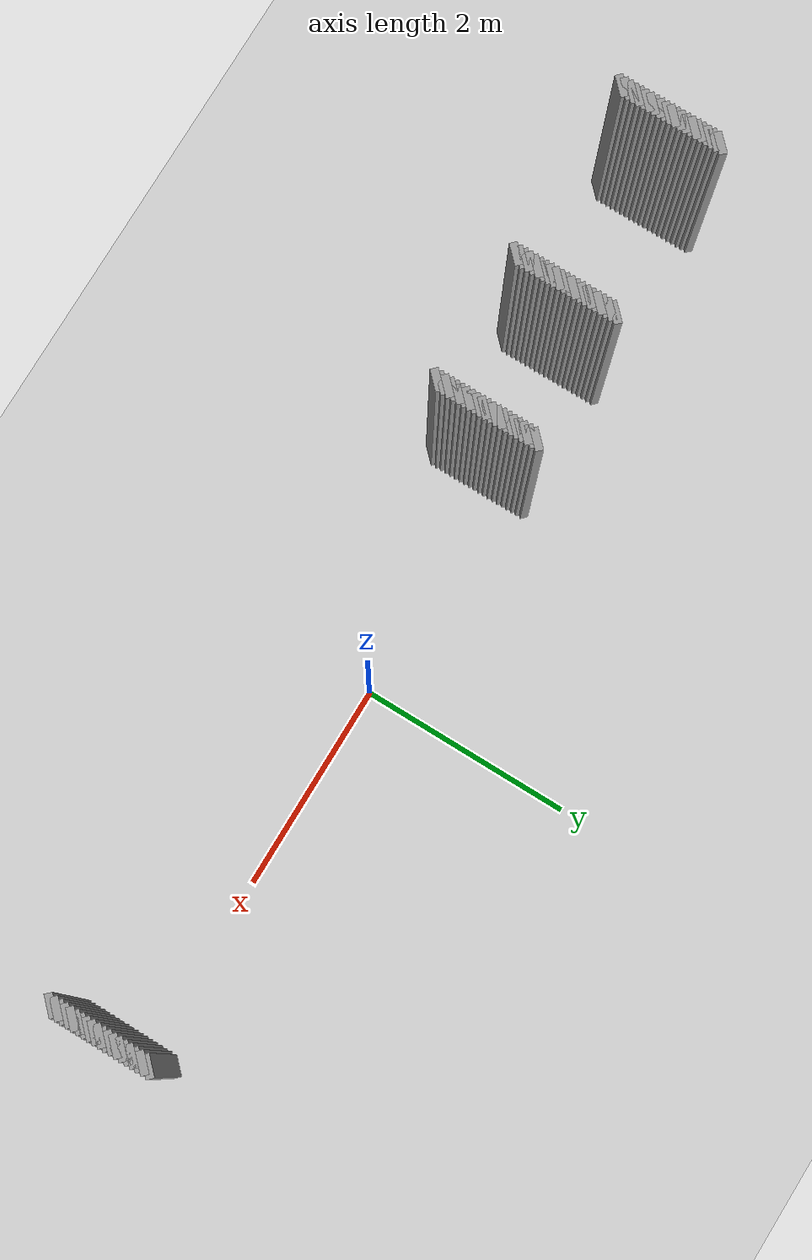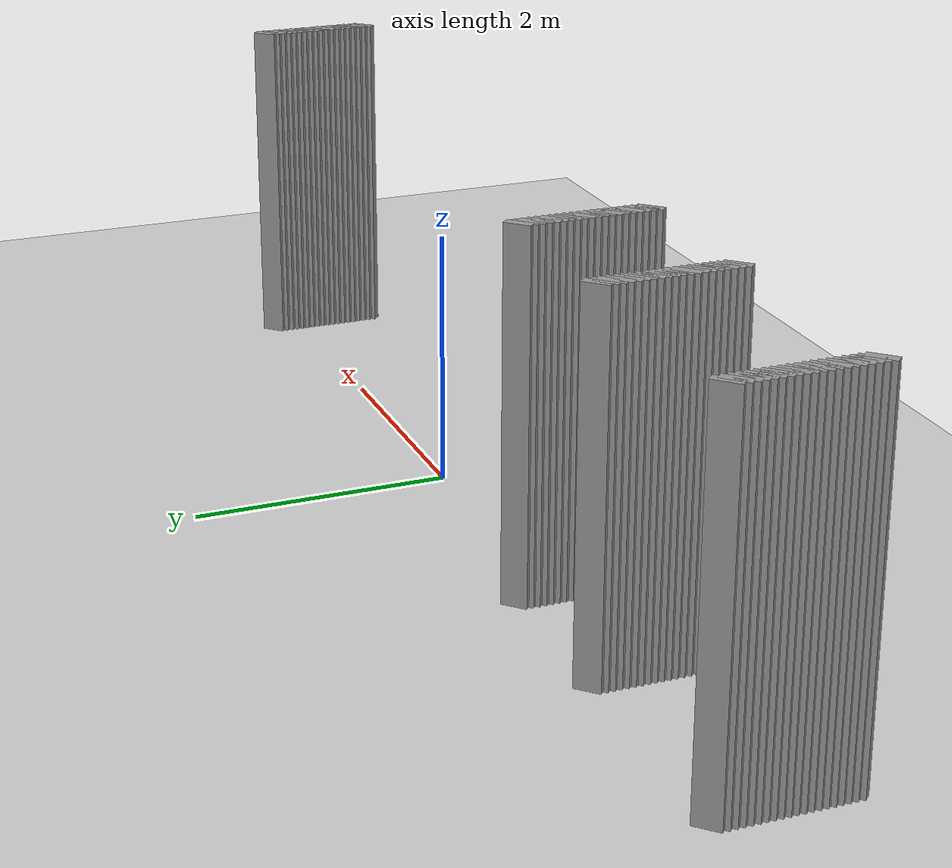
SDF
<sdf version="1.5">
 <world name="default">
  <include><uri>model://ground_plane</uri></include>
  <include><uri>model://sun</uri></include>
  <model name="grey_wall_865">
   <static>1</static>
   <link name="link">
    <pose>-5.125 0.275  1.4 0 0 -0.785398163397</pose>
    <collision name="collision"><geometry><box><size>0.0707106781187 .2  2.8</size></box></geometry></collision>
    <visual name="visual">
     <cast_shadows>0</cast_shadows>
     <geometry><box><size>0.0707106781187 .2  2.8</size></box></geometry>
     <material>
      <script>
       <uri>model://grey_wall/materials/scripts</uri>
       <uri>model://grey_wall/materials/textures</uri>
       <name>vrc/grey_wall</name>
      </script>
     </material>
    </visual>
   </link>
  </model>
  <model name="grey_wall_866">
   <static>1</static>
   <link name="link">
    <pose>-3.425 0.275  1.4 0 0 -0.785398163397</pose>
    <collision name="collision"><geometry><box><size>0.0707106781187 .2  2.8</size></box></geometry></collision>
    <visual name="visual">
     <cast_shadows>0</cast_shadows>
     <geometry><box><size>0.0707106781187 .2  2.8</size></box></geometry>
     <material>
      <script>
       <uri>model://grey_wall/materials/scripts</uri>
       <uri>model://grey_wall/materials/textures</uri>
       <name>vrc/grey_wall</name>
      </script>
     </material>
    </visual>
   </link>
  </model>
  <model name="grey_wall_867">
   <static>1</static>
   <link name="link">
    <pose>-2.175 0.275  1.4 0 0 -0.785398163397</pose>
    <collision name="collision"><geometry><box><size>0.0707106781187 .2  2.8</size></box></geometry></collision>
    <visual name="visual">
     <cast_shadows>0</cast_shadows>
     <geometry><box><size>0.0707106781187 .2  2.8</size></box></geometry>
     <material>
      <script>
       <uri>model://grey_wall/materials/scripts</uri>
       <uri>model://grey_wall/materials/textures</uri>
       <name>vrc/grey_wall</name>
      </script>
     </material>
    </visual>
   </link>
  </model>
  <model name="grey_wall_868">
   <static>1</static>
   <link name="link">
    <pose>3.725 0.275  1.4 0 0 -0.785398163397</pose>
    <collision name="collision"><geometry><box><size>0.0707106781187 .2  2.8</size></box></geometry></collision>
    <visual name="visual">
     <cast_shadows>0</cast_shadows>
     <geometry><box><size>0.0707106781187 .2  2.8</size></box></geometry>
     <material>
      <script>
       <uri>model://grey_wall/materials/scripts</uri>
       <uri>model://grey_wall/materials/textures</uri>
       <name>vrc/grey_wall</name>
      </script>
     </material>
    </visual>
   </link>
  </model>
  <model name="grey_wall_869">
   <static>1</static>
   <link name="link">
    <pose>-5.125 0.225  1.4 0 0 -0.785398163397</pose>
    <collision name="collision"><geometry><box><size>0.0707106781187 .2  2.8</size></box></geometry></collision>
    <visual name="visual">
     <cast_shadows>0</cast_shadows>
     <geometry><box><size>0.0707106781187 .2  2.8</size></box></geometry>
     <material>
      <script>
       <uri>model://grey_wall/materials/scripts</uri>
       <uri>model://grey_wall/materials/textures</uri>
       <name>vrc/grey_wall</name>
      </script>
     </material>
    </visual>
   </link>
  </model>
  <model name="grey_wall_870">
   <static>1</static>
   <link name="link">
    <pose>-3.425 0.225  1.4 0 0 -0.785398163397</pose>
    <collision name="collision"><geometry><box><size>0.0707106781187 .2  2.8</size></box></geometry></collision>
    <visual name="visual">
     <cast_shadows>0</cast_shadows>
     <geometry><box><size>0.0707106781187 .2  2.8</size></box></geometry>
     <material>
      <script>
       <uri>model://grey_wall/materials/scripts</uri>
       <uri>model://grey_wall/materials/textures</uri>
       <name>vrc/grey_wall</name>
      </script>
     </material>
    </visual>
   </link>
  </model>
  <model name="grey_wall_871">
   <static>1</static>
   <link name="link">
    <pose>-2.175 0.225  1.4 0 0 -0.785398163397</pose>
    <collision name="collision"><geometry><box><size>0.0707106781187 .2  2.8</size></box></geometry></collision>
    <visual name="visual">
     <cast_shadows>0</cast_shadows>
     <geometry><box><size>0.0707106781187 .2  2.8</size></box></geometry>
     <material>
      <script>
       <uri>model://grey_wall/materials/scripts</uri>
       <uri>model://grey_wall/materials/textures</uri>
       <name>vrc/grey_wall</name>
      </script>
     </material>
    </visual>
   </link>
  </model>
  <model name="grey_wall_872">
   <static>1</static>
   <link name="link">
    <pose>3.725 0.225  1.4 0 0 -0.785398163397</pose>
    <collision name="collision"><geometry><box><size>0.0707106781187 .2  2.8</size></box></geometry></collision>
    <visual name="visual">
     <cast_shadows>0</cast_shadows>
     <geometry><box><size>0.0707106781187 .2  2.8</size></box></geometry>
     <material>
      <script>
       <uri>model://grey_wall/materials/scripts</uri>
       <uri>model://grey_wall/materials/textures</uri>
       <name>vrc/grey_wall</name>
      </script>
     </material>
    </visual>
   </link>
  </model>
  <model name="grey_wall_873">
   <static>1</static>
   <link name="link">
    <pose>-5.125 0.175  1.4 0 0 -0.785398163397</pose>
    <collision name="collision"><geometry><box><size>0.0707106781187 .2  2.8</size></box></geometry></collision>
    <visual name="visual">
     <cast_shadows>0</cast_shadows>
     <geometry><box><size>0.0707106781187 .2  2.8</size></box></geometry>
     <material>
      <script>
       <uri>model://grey_wall/materials/scripts</uri>
       <uri>model://grey_wall/materials/textures</uri>
       <name>vrc/grey_wall</name>
      </script>
     </material>
    </visual>
   </link>
  </model>
  <model name="grey_wall_874">
   <static>1</static>
   <link name="link">
    <pose>-3.425 0.175  1.4 0 0 -0.785398163397</pose>
    <collision name="collision"><geometry><box><size>0.0707106781187 .2  2.8</size></box></geometry></collision>
    <visual name="visual">
     <cast_shadows>0</cast_shadows>
     <geometry><box><size>0.0707106781187 .2  2.8</size></box></geometry>
     <material>
      <script>
       <uri>model://grey_wall/materials/scripts</uri>
       <uri>model://grey_wall/materials/textures</uri>
       <name>vrc/grey_wall</name>
      </script>
     </material>
    </visual>
   </link>
  </model>
  <model name="grey_wall_875">
   <static>1</static>
   <link name="link">
    <pose>-2.175 0.175  1.4 0 0 -0.785398163397</pose>
    <collision name="collision"><geometry><box><size>0.0707106781187 .2  2.8</size></box></geometry></collision>
    <visual name="visual">
     <cast_shadows>0</cast_shadows>
     <geometry><box><size>0.0707106781187 .2  2.8</size></box></geometry>
     <material>
      <script>
       <uri>model://grey_wall/materials/scripts</uri>
       <uri>model://grey_wall/materials/textures</uri>
       <name>vrc/grey_wall</name>
      </script>
     </material>
    </visual>
   </link>
  </model>
  <model name="grey_wall_876">
   <static>1</static>
   <link name="link">
    <pose>3.725 0.175  1.4 0 0 -0.785398163397</pose>
    <collision name="collision"><geometry><box><size>0.0707106781187 .2  2.8</size></box></geometry></collision>
    <visual name="visual">
     <cast_shadows>0</cast_shadows>
     <geometry><box><size>0.0707106781187 .2  2.8</size></box></geometry>
     <material>
      <script>
       <uri>model://grey_wall/materials/scripts</uri>
       <uri>model://grey_wall/materials/textures</uri>
       <name>vrc/grey_wall</name>
      </script>
     </material>
    </visual>
   </link>
  </model>
  <model name="grey_wall_877">
   <static>1</static>
   <link name="link">
    <pose>-5.125 0.125  1.4 0 0 -0.785398163397</pose>
    <collision name="collision"><geometry><box><size>0.0707106781187 .2  2.8</size></box></geometry></collision>
    <visual name="visual">
     <cast_shadows>0</cast_shadows>
     <geometry><box><size>0.0707106781187 .2  2.8</size></box></geometry>
     <material>
      <script>
       <uri>model://grey_wall/materials/scripts</uri>
       <uri>model://grey_wall/materials/textures</uri>
       <name>vrc/grey_wall</name>
      </script>
     </material>
    </visual>
   </link>
  </model>
  <model name="grey_wall_878">
   <static>1</static>
   <link name="link">
    <pose>-3.425 0.125  1.4 0 0 -0.785398163397</pose>
    <collision name="collision"><geometry><box><size>0.0707106781187 .2  2.8</size></box></geometry></collision>
    <visual name="visual">
     <cast_shadows>0</cast_shadows>
     <geometry><box><size>0.0707106781187 .2  2.8</size></box></geometry>
     <material>
      <script>
       <uri>model://grey_wall/materials/scripts</uri>
       <uri>model://grey_wall/materials/textures</uri>
       <name>vrc/grey_wall</name>
      </script>
     </material>
    </visual>
   </link>
  </model>
  <model name="grey_wall_879">
   <static>1</static>
   <link name="link">
    <pose>-2.175 0.125  1.4 0 0 -0.785398163397</pose>
    <collision name="collision"><geometry><box><size>0.0707106781187 .2  2.8</size></box></geometry></collision>
    <visual name="visual">
     <cast_shadows>0</cast_shadows>
     <geometry><box><size>0.0707106781187 .2  2.8</size></box></geometry>
     <material>
      <script>
       <uri>model://grey_wall/materials/scripts</uri>
       <uri>model://grey_wall/materials/textures</uri>
       <name>vrc/grey_wall</name>
      </script>
     </material>
    </visual>
   </link>
  </model>
  <model name="grey_wall_880">
   <static>1</static>
   <link name="link">
    <pose>3.725 0.125  1.4 0 0 -0.785398163397</pose>
    <collision name="collision"><geometry><box><size>0.0707106781187 .2  2.8</size></box></geometry></collision>
    <visual name="visual">
     <cast_shadows>0</cast_shadows>
     <geometry><box><size>0.0707106781187 .2  2.8</size></box></geometry>
     <material>
      <script>
       <uri>model://grey_wall/materials/scripts</uri>
       <uri>model://grey_wall/materials/textures</uri>
       <name>vrc/grey_wall</name>
      </script>
     </material>
    </visual>
   </link>
  </model>
  <model name="grey_wall_881">
   <static>1</static>
   <link name="link">
    <pose>-5.125 0.075  1.4 0 0 -0.785398163397</pose>
    <collision name="collision"><geometry><box><size>0.0707106781187 .2  2.8</size></box></geometry></collision>
    <visual name="visual">
     <cast_shadows>0</cast_shadows>
     <geometry><box><size>0.0707106781187 .2  2.8</size></box></geometry>
     <material>
      <script>
       <uri>model://grey_wall/materials/scripts</uri>
       <uri>model://grey_wall/materials/textures</uri>
       <name>vrc/grey_wall</name>
      </script>
     </material>
    </visual>
   </link>
  </model>
  <model name="grey_wall_882">
   <static>1</static>
   <link name="link">
    <pose>-3.425 0.075  1.4 0 0 -0.785398163397</pose>
    <collision name="collision"><geometry><box><size>0.0707106781187 .2  2.8</size></box></geometry></collision>
    <visual name="visual">
     <cast_shadows>0</cast_shadows>
     <geometry><box><size>0.0707106781187 .2  2.8</size></box></geometry>
     <material>
      <script>
       <uri>model://grey_wall/materials/scripts</uri>
       <uri>model://grey_wall/materials/textures</uri>
       <name>vrc/grey_wall</name>
      </script>
     </material>
    </visual>
   </link>
  </model>
  <model name="grey_wall_883">
   <static>1</static>
   <link name="link">
    <pose>-2.175 0.075  1.4 0 0 -0.785398163397</pose>
    <collision name="collision"><geometry><box><size>0.0707106781187 .2  2.8</size></box></geometry></collision>
    <visual name="visual">
     <cast_shadows>0</cast_shadows>
     <geometry><box><size>0.0707106781187 .2  2.8</size></box></geometry>
     <material>
      <script>
       <uri>model://grey_wall/materials/scripts</uri>
       <uri>model://grey_wall/materials/textures</uri>
       <name>vrc/grey_wall</name>
      </script>
     </material>
    </visual>
   </link>
  </model>
  <model name="grey_wall_884">
   <static>1</static>
   <link name="link">
    <pose>3.725 0.075  1.4 0 0 -0.785398163397</pose>
    <collision name="collision"><geometry><box><size>0.0707106781187 .2  2.8</size></box></geometry></collision>
    <visual name="visual">
     <cast_shadows>0</cast_shadows>
     <geometry><box><size>0.0707106781187 .2  2.8</size></box></geometry>
     <material>
      <script>
       <uri>model://grey_wall/materials/scripts</uri>
       <uri>model://grey_wall/materials/textures</uri>
       <name>vrc/grey_wall</name>
      </script>
     </material>
    </visual>
   </link>
  </model>
  <model name="grey_wall_885">
   <static>1</static>
   <link name="link">
    <pose>-5.125 0.025  1.4 0 0 -0.785398163397</pose>
    <collision name="collision"><geometry><box><size>0.0707106781187 .2  2.8</size></box></geometry></collision>
    <visual name="visual">
     <cast_shadows>0</cast_shadows>
     <geometry><box><size>0.0707106781187 .2  2.8</size></box></geometry>
     <material>
      <script>
       <uri>model://grey_wall/materials/scripts</uri>
       <uri>model://grey_wall/materials/textures</uri>
       <name>vrc/grey_wall</name>
      </script>
     </material>
    </visual>
   </link>
  </model>
  <model name="grey_wall_886">
   <static>1</static>
   <link name="link">
    <pose>-3.425 0.025  1.4 0 0 -0.785398163397</pose>
    <collision name="collision"><geometry><box><size>0.0707106781187 .2  2.8</size></box></geometry></collision>
    <visual name="visual">
     <cast_shadows>0</cast_shadows>
     <geometry><box><size>0.0707106781187 .2  2.8</size></box></geometry>
     <material>
      <script>
       <uri>model://grey_wall/materials/scripts</uri>
       <uri>model://grey_wall/materials/textures</uri>
       <name>vrc/grey_wall</name>
      </script>
     </material>
    </visual>
   </link>
  </model>
  <model name="grey_wall_887">
   <static>1</static>
   <link name="link">
    <pose>-2.175 0.025  1.4 0 0 -0.785398163397</pose>
    <collision name="collision"><geometry><box><size>0.0707106781187 .2  2.8</size></box></geometry></collision>
    <visual name="visual">
     <cast_shadows>0</cast_shadows>
     <geometry><box><size>0.0707106781187 .2  2.8</size></box></geometry>
     <material>
      <script>
       <uri>model://grey_wall/materials/scripts</uri>
       <uri>model://grey_wall/materials/textures</uri>
       <name>vrc/grey_wall</name>
      </script>
     </material>
    </visual>
   </link>
  </model>
  <model name="grey_wall_888">
   <static>1</static>
   <link name="link">
    <pose>3.725 0.025  1.4 0 0 -0.785398163397</pose>
    <collision name="collision"><geometry><box><size>0.0707106781187 .2  2.8</size></box></geometry></collision>
    <visual name="visual">
     <cast_shadows>0</cast_shadows>
     <geometry><box><size>0.0707106781187 .2  2.8</size></box></geometry>
     <material>
      <script>
       <uri>model://grey_wall/materials/scripts</uri>
       <uri>model://grey_wall/materials/textures</uri>
       <name>vrc/grey_wall</name>
      </script>
     </material>
    </visual>
   </link>
  </model>
  <model name="grey_wall_889">
   <static>1</static>
   <link name="link">
    <pose>-5.125 -0.025  1.4 0 0 -0.785398163397</pose>
    <collision name="collision"><geometry><box><size>0.0707106781187 .2  2.8</size></box></geometry></collision>
    <visual name="visual">
     <cast_shadows>0</cast_shadows>
     <geometry><box><size>0.0707106781187 .2  2.8</size></box></geometry>
     <material>
      <script>
       <uri>model://grey_wall/materials/scripts</uri>
       <uri>model://grey_wall/materials/textures</uri>
       <name>vrc/grey_wall</name>
      </script>
     </material>
    </visual>
   </link>
  </model>
  <model name="grey_wall_890">
   <static>1</static>
   <link name="link">
    <pose>-3.425 -0.025  1.4 0 0 -0.785398163397</pose>
    <collision name="collision"><geometry><box><size>0.0707106781187 .2  2.8</size></box></geometry></collision>
    <visual name="visual">
     <cast_shadows>0</cast_shadows>
     <geometry><box><size>0.0707106781187 .2  2.8</size></box></geometry>
     <material>
      <script>
       <uri>model://grey_wall/materials/scripts</uri>
       <uri>model://grey_wall/materials/textures</uri>
       <name>vrc/grey_wall</name>
      </script>
     </material>
    </visual>
   </link>
  </model>
  <model name="grey_wall_891">
   <static>1</static>
   <link name="link">
    <pose>-2.175 -0.025  1.4 0 0 -0.785398163397</pose>
    <collision name="collision"><geometry><box><size>0.0707106781187 .2  2.8</size></box></geometry></collision>
    <visual name="visual">
     <cast_shadows>0</cast_shadows>
     <geometry><box><size>0.0707106781187 .2  2.8</size></box></geometry>
     <material>
      <script>
       <uri>model://grey_wall/materials/scripts</uri>
       <uri>model://grey_wall/materials/textures</uri>
       <name>vrc/grey_wall</name>
      </script>
     </material>
    </visual>
   </link>
  </model>
  <model name="grey_wall_892">
   <static>1</static>
   <link name="link">
    <pose>3.725 -0.025  1.4 0 0 -0.785398163397</pose>
    <collision name="collision"><geometry><box><size>0.0707106781187 .2  2.8</size></box></geometry></collision>
    <visual name="visual">
     <cast_shadows>0</cast_shadows>
     <geometry><box><size>0.0707106781187 .2  2.8</size></box></geometry>
     <material>
      <script>
       <uri>model://grey_wall/materials/scripts</uri>
       <uri>model://grey_wall/materials/textures</uri>
       <name>vrc/grey_wall</name>
      </script>
     </material>
    </visual>
   </link>
  </model>
  <model name="grey_wall_893">
   <static>1</static>
   <link name="link">
    <pose>-5.125 -0.075  1.4 0 0 -0.785398163397</pose>
    <collision name="collision"><geometry><box><size>0.0707106781187 .2  2.8</size></box></geometry></collision>
    <visual name="visual">
     <cast_shadows>0</cast_shadows>
     <geometry><box><size>0.0707106781187 .2  2.8</size></box></geometry>
     <material>
      <script>
       <uri>model://grey_wall/materials/scripts</uri>
       <uri>model://grey_wall/materials/textures</uri>
       <name>vrc/grey_wall</name>
      </script>
     </material>
    </visual>
   </link>
  </model>
  <model name="grey_wall_894">
   <static>1</static>
   <link name="link">
    <pose>-3.425 -0.075  1.4 0 0 -0.785398163397</pose>
    <collision name="collision"><geometry><box><size>0.0707106781187 .2  2.8</size></box></geometry></collision>
    <visual name="visual">
     <cast_shadows>0</cast_shadows>
     <geometry><box><size>0.0707106781187 .2  2.8</size></box></geometry>
     <material>
      <script>
       <uri>model://grey_wall/materials/scripts</uri>
       <uri>model://grey_wall/materials/textures</uri>
       <name>vrc/grey_wall</name>
      </script>
     </material>
    </visual>
   </link>
  </model>
  <model name="grey_wall_895">
   <static>1</static>
   <link name="link">
    <pose>-2.175 -0.075  1.4 0 0 -0.785398163397</pose>
    <collision name="collision"><geometry><box><size>0.0707106781187 .2  2.8</size></box></geometry></collision>
    <visual name="visual">
     <cast_shadows>0</cast_shadows>
     <geometry><box><size>0.0707106781187 .2  2.8</size></box></geometry>
     <material>
      <script>
       <uri>model://grey_wall/materials/scripts</uri>
       <uri>model://grey_wall/materials/textures</uri>
       <name>vrc/grey_wall</name>
      </script>
     </material>
    </visual>
   </link>
  </model>
  <model name="grey_wall_896">
   <static>1</static>
   <link name="link">
    <pose>3.725 -0.075  1.4 0 0 -0.785398163397</pose>
    <collision name="collision"><geometry><box><size>0.0707106781187 .2  2.8</size></box></geometry></collision>
    <visual name="visual">
     <cast_shadows>0</cast_shadows>
     <geometry><box><size>0.0707106781187 .2  2.8</size></box></geometry>
     <material>
      <script>
       <uri>model://grey_wall/materials/scripts</uri>
       <uri>model://grey_wall/materials/textures</uri>
       <name>vrc/grey_wall</name>
      </script>
     </material>
    </visual>
   </link>
  </model>
  <model name="grey_wall_897">
   <static>1</static>
   <link name="link">
    <pose>-5.125 -0.125  1.4 0 0 -0.785398163397</pose>
    <collision name="collision"><geometry><box><size>0.0707106781187 .2  2.8</size></box></geometry></collision>
    <visual name="visual">
     <cast_shadows>0</cast_shadows>
     <geometry><box><size>0.0707106781187 .2  2.8</size></box></geometry>
     <material>
      <script>
       <uri>model://grey_wall/materials/scripts</uri>
       <uri>model://grey_wall/materials/textures</uri>
       <name>vrc/grey_wall</name>
      </script>
     </material>
    </visual>
   </link>
  </model>
  <model name="grey_wall_898">
   <static>1</static>
   <link name="link">
    <pose>-3.425 -0.125  1.4 0 0 -0.785398163397</pose>
    <collision name="collision"><geometry><box><size>0.0707106781187 .2  2.8</size></box></geometry></collision>
    <visual name="visual">
     <cast_shadows>0</cast_shadows>
     <geometry><box><size>0.0707106781187 .2  2.8</size></box></geometry>
     <material>
      <script>
       <uri>model://grey_wall/materials/scripts</uri>
       <uri>model://grey_wall/materials/textures</uri>
       <name>vrc/grey_wall</name>
      </script>
     </material>
    </visual>
   </link>
  </model>
  <model name="grey_wall_899">
   <static>1</static>
   <link name="link">
    <pose>-2.175 -0.125  1.4 0 0 -0.785398163397</pose>
    <collision name="collision"><geometry><box><size>0.0707106781187 .2  2.8</size></box></geometry></collision>
    <visual name="visual">
     <cast_shadows>0</cast_shadows>
     <geometry><box><size>0.0707106781187 .2  2.8</size></box></geometry>
     <material>
      <script>
       <uri>model://grey_wall/materials/scripts</uri>
       <uri>model://grey_wall/materials/textures</uri>
       <name>vrc/grey_wall</name>
      </script>
     </material>
    </visual>
   </link>
  </model>
  <model name="grey_wall_900">
   <static>1</static>
   <link name="link">
    <pose>3.725 -0.125  1.4 0 0 -0.785398163397</pose>
    <collision name="collision"><geometry><box><size>0.0707106781187 .2  2.8</size></box></geometry></collision>
    <visual name="visual">
     <cast_shadows>0</cast_shadows>
     <geometry><box><size>0.0707106781187 .2  2.8</size></box></geometry>
     <material>
      <script>
       <uri>model://grey_wall/materials/scripts</uri>
       <uri>model://grey_wall/materials/textures</uri>
       <name>vrc/grey_wall</name>
      </script>
     </material>
    </visual>
   </link>
  </model>
  <model name="grey_wall_901">
   <static>1</static>
   <link name="link">
    <pose>-5.125 -0.175  1.4 0 0 -0.785398163397</pose>
    <collision name="collision"><geometry><box><size>0.0707106781187 .2  2.8</size></box></geometry></collision>
    <visual name="visual">
     <cast_shadows>0</cast_shadows>
     <geometry><box><size>0.0707106781187 .2  2.8</size></box></geometry>
     <material>
      <script>
       <uri>model://grey_wall/materials/scripts</uri>
       <uri>model://grey_wall/materials/textures</uri>
       <name>vrc/grey_wall</name>
      </script>
     </material>
    </visual>
   </link>
  </model>
  <model name="grey_wall_902">
   <static>1</static>
   <link name="link">
    <pose>-3.425 -0.175  1.4 0 0 -0.785398163397</pose>
    <collision name="collision"><geometry><box><size>0.0707106781187 .2  2.8</size></box></geometry></collision>
    <visual name="visual">
     <cast_shadows>0</cast_shadows>
     <geometry><box><size>0.0707106781187 .2  2.8</size></box></geometry>
     <material>
      <script>
       <uri>model://grey_wall/materials/scripts</uri>
       <uri>model://grey_wall/materials/textures</uri>
       <name>vrc/grey_wall</name>
      </script>
     </material>
    </visual>
   </link>
  </model>
  <model name="grey_wall_903">
   <static>1</static>
   <link name="link">
    <pose>-2.175 -0.175  1.4 0 0 -0.785398163397</pose>
    <collision name="collision"><geometry><box><size>0.0707106781187 .2  2.8</size></box></geometry></collision>
    <visual name="visual">
     <cast_shadows>0</cast_shadows>
     <geometry><box><size>0.0707106781187 .2  2.8</size></box></geometry>
     <material>
      <script>
       <uri>model://grey_wall/materials/scripts</uri>
       <uri>model://grey_wall/materials/textures</uri>
       <name>vrc/grey_wall</name>
      </script>
     </material>
    </visual>
   </link>
  </model>
  <model name="grey_wall_904">
   <static>1</static>
   <link name="link">
    <pose>3.725 -0.175  1.4 0 0 -0.785398163397</pose>
    <collision name="collision"><geometry><box><size>0.0707106781187 .2  2.8</size></box></geometry></collision>
    <visual name="visual">
     <cast_shadows>0</cast_shadows>
     <geometry><box><size>0.0707106781187 .2  2.8</size></box></geometry>
     <material>
      <script>
       <uri>model://grey_wall/materials/scripts</uri>
       <uri>model://grey_wall/materials/textures</uri>
       <name>vrc/grey_wall</name>
      </script>
     </material>
    </visual>
   </link>
  </model>
  <model name="grey_wall_905">
   <static>1</static>
   <link name="link">
    <pose>-5.125 -0.225  1.4 0 0 -0.785398163397</pose>
    <collision name="collision"><geometry><box><size>0.0707106781187 .2  2.8</size></box></geometry></collision>
    <visual name="visual">
     <cast_shadows>0</cast_shadows>
     <geometry><box><size>0.0707106781187 .2  2.8</size></box></geometry>
     <material>
      <script>
       <uri>model://grey_wall/materials/scripts</uri>
       <uri>model://grey_wall/materials/textures</uri>
       <name>vrc/grey_wall</name>
      </script>
     </material>
    </visual>
   </link>
  </model>
  <model name="grey_wall_906">
   <static>1</static>
   <link name="link">
    <pose>-3.425 -0.225  1.4 0 0 -0.785398163397</pose>
    <collision name="collision"><geometry><box><size>0.0707106781187 .2  2.8</size></box></geometry></collision>
    <visual name="visual">
     <cast_shadows>0</cast_shadows>
     <geometry><box><size>0.0707106781187 .2  2.8</size></box></geometry>
     <material>
      <script>
       <uri>model://grey_wall/materials/scripts</uri>
       <uri>model://grey_wall/materials/textures</uri>
       <name>vrc/grey_wall</name>
      </script>
     </material>
    </visual>
   </link>
  </model>
  <model name="grey_wall_907">
   <static>1</static>
   <link name="link">
    <pose>-2.175 -0.225  1.4 0 0 -0.785398163397</pose>
    <collision name="collision"><geometry><box><size>0.0707106781187 .2  2.8</size></box></geometry></collision>
    <visual name="visual">
     <cast_shadows>0</cast_shadows>
     <geometry><box><size>0.0707106781187 .2  2.8</size></box></geometry>
     <material>
      <script>
       <uri>model://grey_wall/materials/scripts</uri>
       <uri>model://grey_wall/materials/textures</uri>
       <name>vrc/grey_wall</name>
      </script>
     </material>
    </visual>
   </link>
  </model>
  <model name="grey_wall_908">
   <static>1</static>
   <link name="link">
    <pose>3.725 -0.225  1.4 0 0 -0.785398163397</pose>
    <collision name="collision"><geometry><box><size>0.0707106781187 .2  2.8</size></box></geometry></collision>
    <visual name="visual">
     <cast_shadows>0</cast_shadows>
     <geometry><box><size>0.0707106781187 .2  2.8</size></box></geometry>
     <material>
      <script>
       <uri>model://grey_wall/materials/scripts</uri>
       <uri>model://grey_wall/materials/textures</uri>
       <name>vrc/grey_wall</name>
      </script>
     </material>
    </visual>
   </link>
  </model>
  <model name="grey_wall_909">
   <static>1</static>
   <link name="link">
    <pose>-5.125 -0.275  1.4 0 0 -0.785398163397</pose>
    <collision name="collision"><geometry><box><size>0.0707106781187 .2  2.8</size></box></geometry></collision>
    <visual name="visual">
     <cast_shadows>0</cast_shadows>
     <geometry><box><size>0.0707106781187 .2  2.8</size></box></geometry>
     <material>
      <script>
       <uri>model://grey_wall/materials/scripts</uri>
       <uri>model://grey_wall/materials/textures</uri>
       <name>vrc/grey_wall</name>
      </script>
     </material>
    </visual>
   </link>
  </model>
  <model name="grey_wall_910">
   <static>1</static>
   <link name="link">
    <pose>-3.425 -0.275  1.4 0 0 -0.785398163397</pose>
    <collision name="collision"><geometry><box><size>0.0707106781187 .2  2.8</size></box></geometry></collision>
    <visual name="visual">
     <cast_shadows>0</cast_shadows>
     <geometry><box><size>0.0707106781187 .2  2.8</size></box></geometry>
     <material>
      <script>
       <uri>model://grey_wall/materials/scripts</uri>
       <uri>model://grey_wall/materials/textures</uri>
       <name>vrc/grey_wall</name>
      </script>
     </material>
    </visual>
   </link>
  </model>
  <model name="grey_wall_911">
   <static>1</static>
   <link name="link">
    <pose>-2.175 -0.275  1.4 0 0 -0.785398163397</pose>
    <collision name="collision"><geometry><box><size>0.0707106781187 .2  2.8</size></box></geometry></collision>
    <visual name="visual">
     <cast_shadows>0</cast_shadows>
     <geometry><box><size>0.0707106781187 .2  2.8</size></box></geometry>
     <material>
      <script>
       <uri>model://grey_wall/materials/scripts</uri>
       <uri>model://grey_wall/materials/textures</uri>
       <name>vrc/grey_wall</name>
      </script>
     </material>
    </visual>
   </link>
  </model>
  <model name="grey_wall_912">
   <static>1</static>
   <link name="link">
    <pose>3.725 -0.275  1.4 0 0 -0.785398163397</pose>
    <collision name="collision"><geometry><box><size>0.0707106781187 .2  2.8</size></box></geometry></collision>
    <visual name="visual">
     <cast_shadows>0</cast_shadows>
     <geometry><box><size>0.0707106781187 .2  2.8</size></box></geometry>
     <material>
      <script>
       <uri>model://grey_wall/materials/scripts</uri>
       <uri>model://grey_wall/materials/textures</uri>
       <name>vrc/grey_wall</name>
      </script>
     </material>
    </visual>
   </link>
  </model>
  <model name="grey_wall_913">
   <static>1</static>
   <link name="link">
    <pose>-5.125 -0.325  1.4 0 0 -0.785398163397</pose>
    <collision name="collision"><geometry><box><size>0.0707106781187 .2  2.8</size></box></geometry></collision>
    <visual name="visual">
     <cast_shadows>0</cast_shadows>
     <geometry><box><size>0.0707106781187 .2  2.8</size></box></geometry>
     <material>
      <script>
       <uri>model://grey_wall/materials/scripts</uri>
       <uri>model://grey_wall/materials/textures</uri>
       <name>vrc/grey_wall</name>
      </script>
     </material>
    </visual>
   </link>
  </model>
  <model name="grey_wall_914">
   <static>1</static>
   <link name="link">
    <pose>-3.425 -0.325  1.4 0 0 -0.785398163397</pose>
    <collision name="collision"><geometry><box><size>0.0707106781187 .2  2.8</size></box></geometry></collision>
    <visual name="visual">
     <cast_shadows>0</cast_shadows>
     <geometry><box><size>0.0707106781187 .2  2.8</size></box></geometry>
     <material>
      <script>
       <uri>model://grey_wall/materials/scripts</uri>
       <uri>model://grey_wall/materials/textures</uri>
       <name>vrc/grey_wall</name>
      </script>
     </material>
    </visual>
   </link>
  </model>
  <model name="grey_wall_915">
   <static>1</static>
   <link name="link">
    <pose>-2.175 -0.325  1.4 0 0 -0.785398163397</pose>
    <collision name="collision"><geometry><box><size>0.0707106781187 .2  2.8</size></box></geometry></collision>
    <visual name="visual">
     <cast_shadows>0</cast_shadows>
     <geometry><box><size>0.0707106781187 .2  2.8</size></box></geometry>
     <material>
      <script>
       <uri>model://grey_wall/materials/scripts</uri>
       <uri>model://grey_wall/materials/textures</uri>
       <name>vrc/grey_wall</name>
      </script>
     </material>
    </visual>
   </link>
  </model>
  <model name="grey_wall_916">
   <static>1</static>
   <link name="link">
    <pose>3.725 -0.325  1.4 0 0 -0.785398163397</pose>
    <collision name="collision"><geometry><box><size>0.0707106781187 .2  2.8</size></box></geometry></collision>
    <visual name="visual">
     <cast_shadows>0</cast_shadows>
     <geometry><box><size>0.0707106781187 .2  2.8</size></box></geometry>
     <material>
      <script>
       <uri>model://grey_wall/materials/scripts</uri>
       <uri>model://grey_wall/materials/textures</uri>
       <name>vrc/grey_wall</name>
      </script>
     </material>
    </visual>
   </link>
  </model>
  <model name="grey_wall_917">
   <static>1</static>
   <link name="link">
    <pose>-5.125 -0.375  1.4 0 0 -0.785398163397</pose>
    <collision name="collision"><geometry><box><size>0.0707106781187 .2  2.8</size></box></geometry></collision>
    <visual name="visual">
     <cast_shadows>0</cast_shadows>
     <geometry><box><size>0.0707106781187 .2  2.8</size></box></geometry>
     <material>
      <script>
       <uri>model://grey_wall/materials/scripts</uri>
       <uri>model://grey_wall/materials/textures</uri>
       <name>vrc/grey_wall</name>
      </script>
     </material>
    </visual>
   </link>
  </model>
  <model name="grey_wall_918">
   <static>1</static>
   <link name="link">
    <pose>-3.425 -0.375  1.4 0 0 -0.785398163397</pose>
    <collision name="collision"><geometry><box><size>0.0707106781187 .2  2.8</size></box></geometry></collision>
    <visual name="visual">
     <cast_shadows>0</cast_shadows>
     <geometry><box><size>0.0707106781187 .2  2.8</size></box></geometry>
     <material>
      <script>
       <uri>model://grey_wall/materials/scripts</uri>
       <uri>model://grey_wall/materials/textures</uri>
       <name>vrc/grey_wall</name>
      </script>
     </material>
    </visual>
   </link>
  </model>
  <model name="grey_wall_919">
   <static>1</static>
   <link name="link">
    <pose>-2.175 -0.375  1.4 0 0 -0.785398163397</pose>
    <collision name="collision"><geometry><box><size>0.0707106781187 .2  2.8</size></box></geometry></collision>
    <visual name="visual">
     <cast_shadows>0</cast_shadows>
     <geometry><box><size>0.0707106781187 .2  2.8</size></box></geometry>
     <material>
      <script>
       <uri>model://grey_wall/materials/scripts</uri>
       <uri>model://grey_wall/materials/textures</uri>
       <name>vrc/grey_wall</name>
      </script>
     </material>
    </visual>
   </link>
  </model>
  <model name="grey_wall_920">
   <static>1</static>
   <link name="link">
    <pose>3.725 -0.375  1.4 0 0 -0.785398163397</pose>
    <collision name="collision"><geometry><box><size>0.0707106781187 .2  2.8</size></box></geometry></collision>
    <visual name="visual">
     <cast_shadows>0</cast_shadows>
     <geometry><box><size>0.0707106781187 .2  2.8</size></box></geometry>
     <material>
      <script>
       <uri>model://grey_wall/materials/scripts</uri>
       <uri>model://grey_wall/materials/textures</uri>
       <name>vrc/grey_wall</name>
      </script>
     </material>
    </visual>
   </link>
  </model>
  <model name="grey_wall_921">
   <static>1</static>
   <link name="link">
    <pose>-5.125 -0.425  1.4 0 0 -0.785398163397</pose>
    <collision name="collision"><geometry><box><size>0.0707106781187 .2  2.8</size></box></geometry></collision>
    <visual name="visual">
     <cast_shadows>0</cast_shadows>
     <geometry><box><size>0.0707106781187 .2  2.8</size></box></geometry>
     <material>
      <script>
       <uri>model://grey_wall/materials/scripts</uri>
       <uri>model://grey_wall/materials/textures</uri>
       <name>vrc/grey_wall</name>
      </script>
     </material>
    </visual>
   </link>
  </model>
  <model name="grey_wall_922">
   <static>1</static>
   <link name="link">
    <pose>-3.425 -0.425  1.4 0 0 -0.785398163397</pose>
    <collision name="collision"><geometry><box><size>0.0707106781187 .2  2.8</size></box></geometry></collision>
    <visual name="visual">
     <cast_shadows>0</cast_shadows>
     <geometry><box><size>0.0707106781187 .2  2.8</size></box></geometry>
     <material>
      <script>
       <uri>model://grey_wall/materials/scripts</uri>
       <uri>model://grey_wall/materials/textures</uri>
       <name>vrc/grey_wall</name>
      </script>
     </material>
    </visual>
   </link>
  </model>
  <model name="grey_wall_923">
   <static>1</static>
   <link name="link">
    <pose>-2.175 -0.425  1.4 0 0 -0.785398163397</pose>
    <collision name="collision"><geometry><box><size>0.0707106781187 .2  2.8</size></box></geometry></collision>
    <visual name="visual">
     <cast_shadows>0</cast_shadows>
     <geometry><box><size>0.0707106781187 .2  2.8</size></box></geometry>
     <material>
      <script>
       <uri>model://grey_wall/materials/scripts</uri>
       <uri>model://grey_wall/materials/textures</uri>
       <name>vrc/grey_wall</name>
      </script>
     </material>
    </visual>
   </link>
  </model>
  <model name="grey_wall_924">
   <static>1</static>
   <link name="link">
    <pose>3.725 -0.425  1.4 0 0 -0.785398163397</pose>
    <collision name="collision"><geometry><box><size>0.0707106781187 .2  2.8</size></box></geometry></collision>
    <visual name="visual">
     <cast_shadows>0</cast_shadows>
     <geometry><box><size>0.0707106781187 .2  2.8</size></box></geometry>
     <material>
      <script>
       <uri>model://grey_wall/materials/scripts</uri>
       <uri>model://grey_wall/materials/textures</uri>
       <name>vrc/grey_wall</name>
      </script>
     </material>
    </visual>
   </link>
  </model>
  <model name="grey_wall_925">
   <static>1</static>
   <link name="link">
    <pose>-5.125 -0.475  1.4 0 0 -0.785398163397</pose>
    <collision name="collision"><geometry><box><size>0.0707106781187 .2  2.8</size></box></geometry></collision>
    <visual name="visual">
     <cast_shadows>0</cast_shadows>
     <geometry><box><size>0.0707106781187 .2  2.8</size></box></geometry>
     <material>
      <script>
       <uri>model://grey_wall/materials/scripts</uri>
       <uri>model://grey_wall/materials/textures</uri>
       <name>vrc/grey_wall</name>
      </script>
     </material>
    </visual>
   </link>
  </model>
  <model name="grey_wall_926">
   <static>1</static>
   <link name="link">
    <pose>-3.425 -0.475  1.4 0 0 -0.785398163397</pose>
    <collision name="collision"><geometry><box><size>0.0707106781187 .2  2.8</size></box></geometry></collision>
    <visual name="visual">
     <cast_shadows>0</cast_shadows>
     <geometry><box><size>0.0707106781187 .2  2.8</size></box></geometry>
     <material>
      <script>
       <uri>model://grey_wall/materials/scripts</uri>
       <uri>model://grey_wall/materials/textures</uri>
       <name>vrc/grey_wall</name>
      </script>
     </material>
    </visual>
   </link>
  </model>
  <model name="grey_wall_927">
   <static>1</static>
   <link name="link">
    <pose>-2.175 -0.475  1.4 0 0 -0.785398163397</pose>
    <collision name="collision"><geometry><box><size>0.0707106781187 .2  2.8</size></box></geometry></collision>
    <visual name="visual">
     <cast_shadows>0</cast_shadows>
     <geometry><box><size>0.0707106781187 .2  2.8</size></box></geometry>
     <material>
      <script>
       <uri>model://grey_wall/materials/scripts</uri>
       <uri>model://grey_wall/materials/textures</uri>
       <name>vrc/grey_wall</name>
      </script>
     </material>
    </visual>
   </link>
  </model>
  <model name="grey_wall_928">
   <static>1</static>
   <link name="link">
    <pose>3.725 -0.475  1.4 0 0 -0.785398163397</pose>
    <collision name="collision"><geometry><box><size>0.0707106781187 .2  2.8</size></box></geometry></collision>
    <visual name="visual">
     <cast_shadows>0</cast_shadows>
     <geometry><box><size>0.0707106781187 .2  2.8</size></box></geometry>
     <material>
      <script>
       <uri>model://grey_wall/materials/scripts</uri>
       <uri>model://grey_wall/materials/textures</uri>
       <name>vrc/grey_wall</name>
      </script>
     </material>
    </visual>
   </link>
  </model>
  <model name="grey_wall_929">
   <static>1</static>
   <link name="link">
    <pose>-5.125 -0.525  1.4 0 0 -0.785398163397</pose>
    <collision name="collision"><geometry><box><size>0.0707106781187 .2  2.8</size></box></geometry></collision>
    <visual name="visual">
     <cast_shadows>0</cast_shadows>
     <geometry><box><size>0.0707106781187 .2  2.8</size></box></geometry>
     <material>
      <script>
       <uri>model://grey_wall/materials/scripts</uri>
       <uri>model://grey_wall/materials/textures</uri>
       <name>vrc/grey_wall</name>
      </script>
     </material>
    </visual>
   </link>
  </model>
  <model name="grey_wall_930">
   <static>1</static>
   <link name="link">
    <pose>-3.425 -0.525  1.4 0 0 -0.785398163397</pose>
    <collision name="collision"><geometry><box><size>0.0707106781187 .2  2.8</size></box></geometry></collision>
    <visual name="visual">
     <cast_shadows>0</cast_shadows>
     <geometry><box><size>0.0707106781187 .2  2.8</size></box></geometry>
     <material>
      <script>
       <uri>model://grey_wall/materials/scripts</uri>
       <uri>model://grey_wall/materials/textures</uri>
       <name>vrc/grey_wall</name>
      </script>
     </material>
    </visual>
   </link>
  </model>
  <model name="grey_wall_931">
   <static>1</static>
   <link name="link">
    <pose>-2.175 -0.525  1.4 0 0 -0.785398163397</pose>
    <collision name="collision"><geometry><box><size>0.0707106781187 .2  2.8</size></box></geometry></collision>
    <visual name="visual">
     <cast_shadows>0</cast_shadows>
     <geometry><box><size>0.0707106781187 .2  2.8</size></box></geometry>
     <material>
      <script>
       <uri>model://grey_wall/materials/scripts</uri>
       <uri>model://grey_wall/materials/textures</uri>
       <name>vrc/grey_wall</name>
      </script>
     </material>
    </visual>
   </link>
  </model>
  <model name="grey_wall_932">
   <static>1</static>
   <link name="link">
    <pose>3.725 -0.525  1.4 0 0 -0.785398163397</pose>
    <collision name="collision"><geometry><box><size>0.0707106781187 .2  2.8</size></box></geometry></collision>
    <visual name="visual">
     <cast_shadows>0</cast_shadows>
     <geometry><box><size>0.0707106781187 .2  2.8</size></box></geometry>
     <material>
      <script>
       <uri>model://grey_wall/materials/scripts</uri>
       <uri>model://grey_wall/materials/textures</uri>
       <name>vrc/grey_wall</name>
      </script>
     </material>
    </visual>
   </link>
  </model>
  <model name="grey_wall_933">
   <static>1</static>
   <link name="link">
    <pose>-5.125 -0.575  1.4 0 0 -0.785398163397</pose>
    <collision name="collision"><geometry><box><size>0.0707106781187 .2  2.8</size></box></geometry></collision>
    <visual name="visual">
     <cast_shadows>0</cast_shadows>
     <geometry><box><size>0.0707106781187 .2  2.8</size></box></geometry>
     <material>
      <script>
       <uri>model://grey_wall/materials/scripts</uri>
       <uri>model://grey_wall/materials/textures</uri>
       <name>vrc/grey_wall</name>
      </script>
     </material>
    </visual>
   </link>
  </model>
  <model name="grey_wall_934">
   <static>1</static>
   <link name="link">
    <pose>-3.425 -0.575  1.4 0 0 -0.785398163397</pose>
    <collision name="collision"><geometry><box><size>0.0707106781187 .2  2.8</size></box></geometry></collision>
    <visual name="visual">
     <cast_shadows>0</cast_shadows>
     <geometry><box><size>0.0707106781187 .2  2.8</size></box></geometry>
     <material>
      <script>
       <uri>model://grey_wall/materials/scripts</uri>
       <uri>model://grey_wall/materials/textures</uri>
       <name>vrc/grey_wall</name>
      </script>
     </material>
    </visual>
   </link>
  </model>
  <model name="grey_wall_935">
   <static>1</static>
   <link name="link">
    <pose>-2.175 -0.575  1.4 0 0 -0.785398163397</pose>
    <collision name="collision"><geometry><box><size>0.0707106781187 .2  2.8</size></box></geometry></collision>
    <visual name="visual">
     <cast_shadows>0</cast_shadows>
     <geometry><box><size>0.0707106781187 .2  2.8</size></box></geometry>
     <material>
      <script>
       <uri>model://grey_wall/materials/scripts</uri>
       <uri>model://grey_wall/materials/textures</uri>
       <name>vrc/grey_wall</name>
      </script>
     </material>
    </visual>
   </link>
  </model>
  <model name="grey_wall_936">
   <static>1</static>
   <link name="link">
    <pose>3.725 -0.575  1.4 0 0 -0.785398163397</pose>
    <collision name="collision"><geometry><box><size>0.0707106781187 .2  2.8</size></box></geometry></collision>
    <visual name="visual">
     <cast_shadows>0</cast_shadows>
     <geometry><box><size>0.0707106781187 .2  2.8</size></box></geometry>
     <material>
      <script>
       <uri>model://grey_wall/materials/scripts</uri>
       <uri>model://grey_wall/materials/textures</uri>
       <name>vrc/grey_wall</name>
      </script>
     </material>
    </visual>
   </link>
  </model>
  <model name="grey_wall_937">
   <static>1</static>
   <link name="link">
    <pose>-5.125 -0.625  1.4 0 0 -0.785398163397</pose>
    <collision name="collision"><geometry><box><size>0.0707106781187 .2  2.8</size></box></geometry></collision>
    <visual name="visual">
     <cast_shadows>0</cast_shadows>
     <geometry><box><size>0.0707106781187 .2  2.8</size></box></geometry>
     <material>
      <script>
       <uri>model://grey_wall/materials/scripts</uri>
       <uri>model://grey_wall/materials/textures</uri>
       <name>vrc/grey_wall</name>
      </script>
     </material>
    </visual>
   </link>
  </model>
  <model name="grey_wall_938">
   <static>1</static>
   <link name="link">
    <pose>-3.425 -0.625  1.4 0 0 -0.785398163397</pose>
    <collision name="collision"><geometry><box><size>0.0707106781187 .2  2.8</size></box></geometry></collision>
    <visual name="visual">
     <cast_shadows>0</cast_shadows>
     <geometry><box><size>0.0707106781187 .2  2.8</size></box></geometry>
     <material>
      <script>
       <uri>model://grey_wall/materials/scripts</uri>
       <uri>model://grey_wall/materials/textures</uri>
       <name>vrc/grey_wall</name>
      </script>
     </material>
    </visual>
   </link>
  </model>
  <model name="grey_wall_939">
   <static>1</static>
   <link name="link">
    <pose>-2.175 -0.625  1.4 0 0 -0.785398163397</pose>
    <collision name="collision"><geometry><box><size>0.0707106781187 .2  2.8</size></box></geometry></collision>
    <visual name="visual">
     <cast_shadows>0</cast_shadows>
     <geometry><box><size>0.0707106781187 .2  2.8</size></box></geometry>
     <material>
      <script>
       <uri>model://grey_wall/materials/scripts</uri>
       <uri>model://grey_wall/materials/textures</uri>
       <name>vrc/grey_wall</name>
      </script>
     </material>
    </visual>
   </link>
  </model>
  <model name="grey_wall_940">
   <static>1</static>
   <link name="link">
    <pose>3.725 -0.625  1.4 0 0 -0.785398163397</pose>
    <collision name="collision"><geometry><box><size>0.0707106781187 .2  2.8</size></box></geometry></collision>
    <visual name="visual">
     <cast_shadows>0</cast_shadows>
     <geometry><box><size>0.0707106781187 .2  2.8</size></box></geometry>
     <material>
      <script>
       <uri>model://grey_wall/materials/scripts</uri>
       <uri>model://grey_wall/materials/textures</uri>
       <name>vrc/grey_wall</name>
      </script>
     </material>
    </visual>
   </link>
  </model>
  <model name="grey_wall_941">
   <static>1</static>
   <link name="link">
    <pose>-5.125 -0.675  1.4 0 0 -0.785398163397</pose>
    <collision name="collision"><geometry><box><size>0.0707106781187 .2  2.8</size></box></geometry></collision>
    <visual name="visual">
     <cast_shadows>0</cast_shadows>
     <geometry><box><size>0.0707106781187 .2  2.8</size></box></geometry>
     <material>
      <script>
       <uri>model://grey_wall/materials/scripts</uri>
       <uri>model://grey_wall/materials/textures</uri>
       <name>vrc/grey_wall</name>
      </script>
     </material>
    </visual>
   </link>
  </model>
  <model name="grey_wall_942">
   <static>1</static>
   <link name="link">
    <pose>-3.425 -0.675  1.4 0 0 -0.785398163397</pose>
    <collision name="collision"><geometry><box><size>0.0707106781187 .2  2.8</size></box></geometry></collision>
    <visual name="visual">
     <cast_shadows>0</cast_shadows>
     <geometry><box><size>0.0707106781187 .2  2.8</size></box></geometry>
     <material>
      <script>
       <uri>model://grey_wall/materials/scripts</uri>
       <uri>model://grey_wall/materials/textures</uri>
       <name>vrc/grey_wall</name>
      </script>
     </material>
    </visual>
   </link>
  </model>
  <model name="grey_wall_943">
   <static>1</static>
   <link name="link">
    <pose>-2.175 -0.675  1.4 0 0 -0.785398163397</pose>
    <collision name="collision"><geometry><box><size>0.0707106781187 .2  2.8</size></box></geometry></collision>
    <visual name="visual">
     <cast_shadows>0</cast_shadows>
     <geometry><box><size>0.0707106781187 .2  2.8</size></box></geometry>
     <material>
      <script>
       <uri>model://grey_wall/materials/scripts</uri>
       <uri>model://grey_wall/materials/textures</uri>
       <name>vrc/grey_wall</name>
      </script>
     </material>
    </visual>
   </link>
  </model>
 </world>
</sdf>
